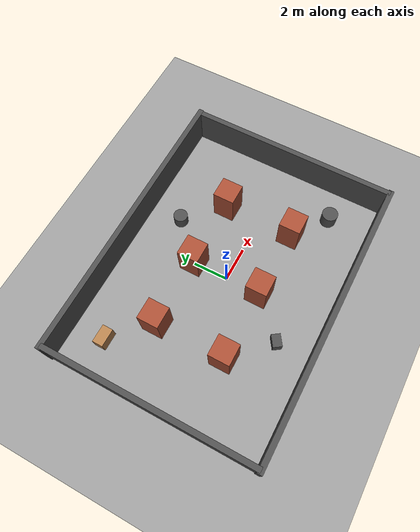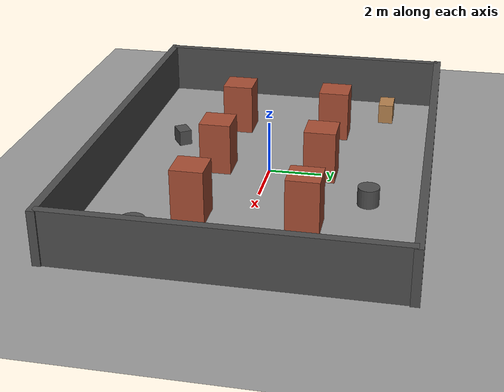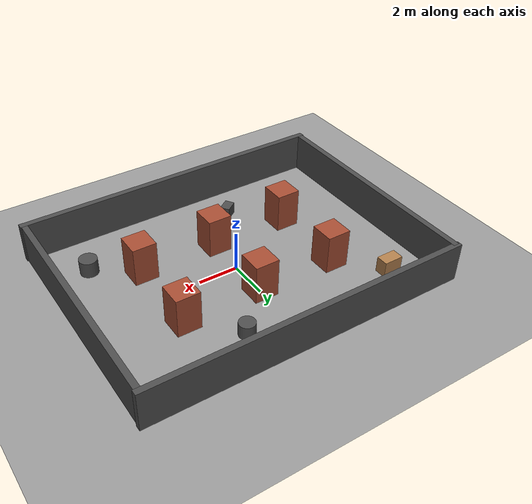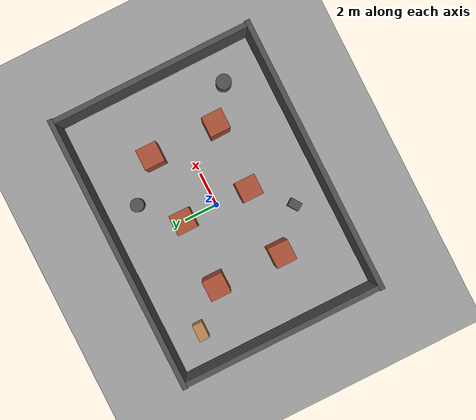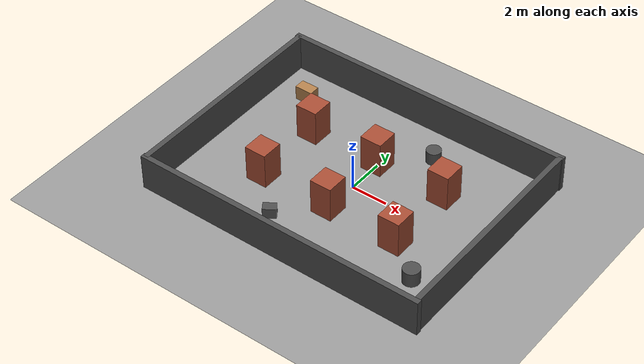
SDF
<?xml version="1.0" ?>
<sdf version="1.6">
  <world name="mine">

    <!-- ===== Scene: dim, underground feel ===== -->
    <scene>
      <ambient>0.3 0.3 0.3 1</ambient>
      <background>0.05 0.05 0.07 1</background>
      <shadows>false</shadows>
    </scene>

    <!-- A faint sun-equivalent so nothing is pitch black; shadows off for VM speed -->
    <light name="ambient_fill" type="directional">
      <cast_shadows>false</cast_shadows>
      <pose>0 0 8 0 0 0</pose>
      <diffuse>0.4 0.4 0.4 1</diffuse>
      <specular>0.1 0.1 0.1 1</specular>
      <direction>-0.3 0.2 -1</direction>
    </light>

    <!-- A couple of "tunnel lamps" for atmosphere -->
    <light name="lamp_1" type="point">
      <cast_shadows>false</cast_shadows>
      <pose>-4 0 2.2 0 0 0</pose>
      <diffuse>0.8 0.75 0.6 1</diffuse>
      <attenuation><range>10</range><constant>0.4</constant><linear>0.1</linear><quadratic>0.01</quadratic></attenuation>
    </light>
    <light name="lamp_2" type="point">
      <cast_shadows>false</cast_shadows>
      <pose>4 0 2.2 0 0 0</pose>
      <diffuse>0.8 0.75 0.6 1</diffuse>
      <attenuation><range>10</range><constant>0.4</constant><linear>0.1</linear><quadratic>0.01</quadratic></attenuation>
    </light>

    <!-- ===== Ground (inline, so no model:// dependency) ===== -->
    <model name="mine_floor">
      <static>true</static>
      <link name="link">
        <collision name="collision">
          <geometry><plane><normal>0 0 1</normal><size>40 40</size></plane></geometry>
          <surface><friction><ode><mu>100</mu><mu2>50</mu2></ode></friction></surface>
        </collision>
        <visual name="visual">
          <geometry><plane><normal>0 0 1</normal><size>40 40</size></plane></geometry>
          <material><script><uri>file://media/materials/scripts/gazebo.material</uri><name>Gazebo/Grey</name></script></material>
        </visual>
      </link>
    </model>

    <!-- ===== Outer mine walls (room is 16m x 12m) ===== -->
    <model name="mine_boundary">
      <static>true</static>

      <!-- North wall (+y) -->
      <link name="wall_north">
        <pose>0 6 1 0 0 0</pose>
        <collision name="c"><geometry><box><size>16.4 0.3 2</size></box></geometry></collision>
        <visual name="v"><geometry><box><size>16.4 0.3 2</size></box></geometry>
          <material><script><uri>file://media/materials/scripts/gazebo.material</uri><name>Gazebo/DarkGrey</name></script></material></visual>
      </link>

      <!-- South wall (-y) -->
      <link name="wall_south">
        <pose>0 -6 1 0 0 0</pose>
        <collision name="c"><geometry><box><size>16.4 0.3 2</size></box></geometry></collision>
        <visual name="v"><geometry><box><size>16.4 0.3 2</size></box></geometry>
          <material><script><uri>file://media/materials/scripts/gazebo.material</uri><name>Gazebo/DarkGrey</name></script></material></visual>
      </link>

      <!-- East wall (+x) -->
      <link name="wall_east">
        <pose>8 0 1 0 0 0</pose>
        <collision name="c"><geometry><box><size>0.3 12 2</size></box></geometry></collision>
        <visual name="v"><geometry><box><size>0.3 12 2</size></box></geometry>
          <material><script><uri>file://media/materials/scripts/gazebo.material</uri><name>Gazebo/DarkGrey</name></script></material></visual>
      </link>

      <!-- West wall (-x) -->
      <link name="wall_west">
        <pose>-8 0 1 0 0 0</pose>
        <collision name="c"><geometry><box><size>0.3 12 2</size></box></geometry></collision>
        <visual name="v"><geometry><box><size>0.3 12 2</size></box></geometry>
          <material><script><uri>file://media/materials/scripts/gazebo.material</uri><name>Gazebo/DarkGrey</name></script></material></visual>
      </link>
    </model>

    <!-- ===== Support pillars (room-and-pillar grid) ===== -->
    <!-- 6 pillars at x = -4,0,4 and y = -2,2. ~3m corridors between them. -->
    <model name="pillars">
      <static>true</static>

      <link name="p1"><pose>-4 -2 1 0 0 0</pose>
        <collision name="c"><geometry><box><size>1.2 1.2 2</size></box></geometry></collision>
        <visual name="v"><geometry><box><size>1.2 1.2 2</size></box></geometry>
          <material><script><uri>file://media/materials/scripts/gazebo.material</uri><name>Gazebo/Bricks</name></script></material></visual></link>

      <link name="p2"><pose>0 -2 1 0 0 0</pose>
        <collision name="c"><geometry><box><size>1.2 1.2 2</size></box></geometry></collision>
        <visual name="v"><geometry><box><size>1.2 1.2 2</size></box></geometry>
          <material><script><uri>file://media/materials/scripts/gazebo.material</uri><name>Gazebo/Bricks</name></script></material></visual></link>

      <link name="p3"><pose>4 -2 1 0 0 0</pose>
        <collision name="c"><geometry><box><size>1.2 1.2 2</size></box></geometry></collision>
        <visual name="v"><geometry><box><size>1.2 1.2 2</size></box></geometry>
          <material><script><uri>file://media/materials/scripts/gazebo.material</uri><name>Gazebo/Bricks</name></script></material></visual></link>

      <link name="p4"><pose>-4 2 1 0 0 0</pose>
        <collision name="c"><geometry><box><size>1.2 1.2 2</size></box></geometry></collision>
        <visual name="v"><geometry><box><size>1.2 1.2 2</size></box></geometry>
          <material><script><uri>file://media/materials/scripts/gazebo.material</uri><name>Gazebo/Bricks</name></script></material></visual></link>

      <link name="p5"><pose>0 2 1 0 0 0</pose>
        <collision name="c"><geometry><box><size>1.2 1.2 2</size></box></geometry></collision>
        <visual name="v"><geometry><box><size>1.2 1.2 2</size></box></geometry>
          <material><script><uri>file://media/materials/scripts/gazebo.material</uri><name>Gazebo/Bricks</name></script></material></visual></link>

      <link name="p6"><pose>4 2 1 0 0 0</pose>
        <collision name="c"><geometry><box><size>1.2 1.2 2</size></box></geometry></collision>
        <visual name="v"><geometry><box><size>1.2 1.2 2</size></box></geometry>
          <material><script><uri>file://media/materials/scripts/gazebo.material</uri><name>Gazebo/Bricks</name></script></material></visual></link>
    </model>

    <!-- ===== Scattered rubble / rocks as extra obstacles ===== -->
    <model name="rubble">
      <static>true</static>

      <!-- rock 1 (cylinder) -->
      <link name="rock1"><pose>2 4 0.35 0 0 0</pose>
        <collision name="c"><geometry><cylinder><radius>0.4</radius><length>0.7</length></cylinder></geometry></collision>
        <visual name="v"><geometry><cylinder><radius>0.4</radius><length>0.7</length></cylinder></geometry>
          <material><script><uri>file://media/materials/scripts/gazebo.material</uri><name>Gazebo/DarkGrey</name></script></material></visual></link>

      <!-- rock 2 (box, tilted) -->
      <link name="rock2"><pose>-2 -4 0.3 0 0 0.6</pose>
        <collision name="c"><geometry><box><size>0.7 0.5 0.6</size></box></geometry></collision>
        <visual name="v"><geometry><box><size>0.7 0.5 0.6</size></box></geometry>
          <material><script><uri>file://media/materials/scripts/gazebo.material</uri><name>Gazebo/DarkGrey</name></script></material></visual></link>

      <!-- rock 3 (cylinder) -->
      <link name="rock3"><pose>6 -3.5 0.4 0 0 0</pose>
        <collision name="c"><geometry><cylinder><radius>0.45</radius><length>0.8</length></cylinder></geometry></collision>
        <visual name="v"><geometry><cylinder><radius>0.45</radius><length>0.8</length></cylinder></geometry>
          <material><script><uri>file://media/materials/scripts/gazebo.material</uri><name>Gazebo/DarkGrey</name></script></material></visual></link>

      <!-- mine cart (wooden box) -->
      <link name="cart"><pose>-6 4 0.4 0 0 0</pose>
        <collision name="c"><geometry><box><size>1.0 0.6 0.8</size></box></geometry></collision>
        <visual name="v"><geometry><box><size>1.0 0.6 0.8</size></box></geometry>
          <material><script><uri>file://media/materials/scripts/gazebo.material</uri><name>Gazebo/Wood</name></script></material></visual></link>
    </model>

    <!-- ===== Physics ===== -->
    <physics type="ode">
      <max_step_size>0.001</max_step_size>
      <real_time_factor>1</real_time_factor>
      <real_time_update_rate>1000</real_time_update_rate>
    </physics>

  </world>
</sdf>
